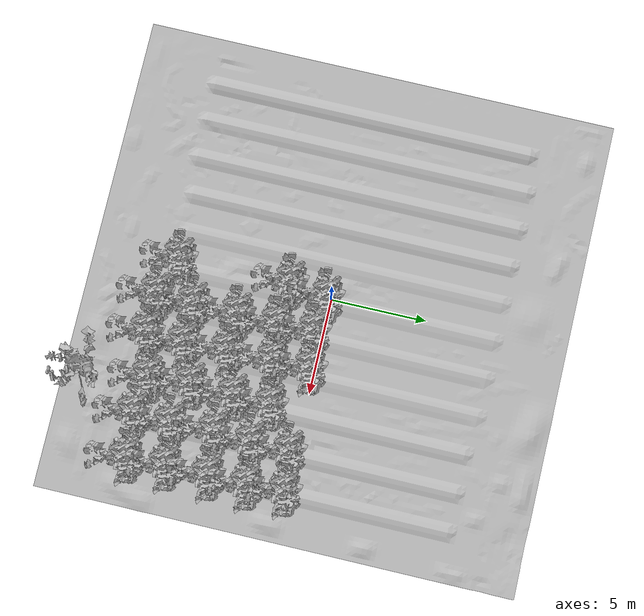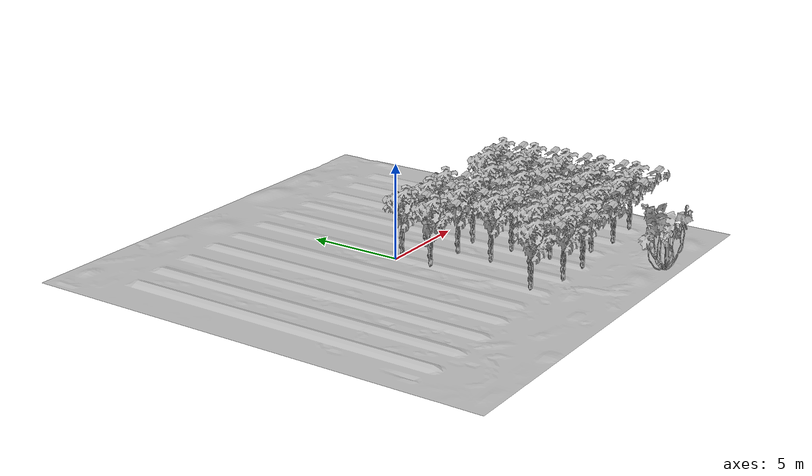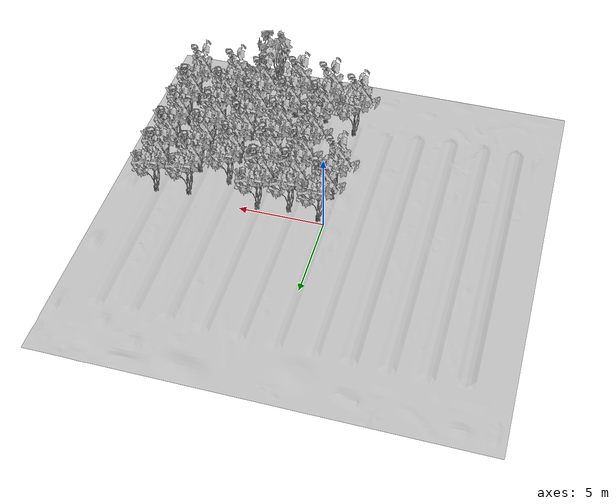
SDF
<sdf version="1.7">
 <world name="default">
  <model name="terrain_2">
   <pose>0.265856 -0.094206 0 0 -0 0</pose>
   <static>1</static>
   <link name="body">
    <visual name="visual">
     <geometry><mesh><uri>model://terrain_2/media/terrain_2.dae</uri></mesh></geometry>
     <material>
      <script>
       <uri>model://terrain_2/media/scripts</uri>
       <uri>model://terrain_2/media/Textures</uri>
       <name>RepeatedGrass/Diffuse</name>
      </script>
     </material>
    </visual>
    <collision name="collision">
     <geometry><mesh><uri>model://terrain_2/media/terrain_2.dae</uri></mesh></geometry>
    </collision>
   </link>
  </model>
  <model name="Bush 4">
   <static>1</static>
   <pose>6.33665 -11.7657 0 1.57079 -0 0</pose>
   <link name="link">
    <collision name="collision">
     <geometry><mesh><scale>5 5 5</scale><uri>model://bush_4/meshes/bush_4.obj</uri></mesh></geometry>
    </collision>
    <visual name="visual">
     <geometry><mesh><scale>5 5 5</scale><uri>model://bush_4/meshes/bush_4.obj</uri></mesh></geometry>
    </visual>
   </link>
  </model>
  <model name="Bush 5">
   <static>1</static>
   <pose>2.12509 -8.37314 0 1.57079 -0 0</pose>
   <link name="link">
    <collision name="collision">
     <geometry><mesh><scale>5 5 5</scale><uri>model://bush_5/meshes/bush_5.obj</uri></mesh></geometry>
    </collision>
    <visual name="visual">
     <geometry><mesh><scale>5 5 5</scale><uri>model://bush_5/meshes/bush_5.obj</uri></mesh></geometry>
    </visual>
   </link>
  </model>
  <model name="Bush 5_0">
   <static>1</static>
   <pose>2.18418 -6.49246 0 1.57079 -0 0</pose>
   <link name="link">
    <collision name="collision">
     <geometry><mesh><scale>5 5 5</scale><uri>model://bush_5/meshes/bush_5.obj</uri></mesh></geometry>
    </collision>
    <visual name="visual">
     <geometry><mesh><scale>5 5 5</scale><uri>model://bush_5/meshes/bush_5.obj</uri></mesh></geometry>
    </visual>
   </link>
  </model>
  <model name="Bush 5_1">
   <static>1</static>
   <pose>2.20313 -4.25197 0 1.57079 -0 0</pose>
   <link name="link">
    <collision name="collision">
     <geometry><mesh><scale>5 5 5</scale><uri>model://bush_5/meshes/bush_5.obj</uri></mesh></geometry>
    </collision>
    <visual name="visual">
     <geometry><mesh><scale>5 5 5</scale><uri>model://bush_5/meshes/bush_5.obj</uri></mesh></geometry>
    </visual>
   </link>
  </model>
  <model name="Bush 5_2">
   <static>1</static>
   <pose>2.26365 -2.27175 0 1.57079 -0 0</pose>
   <link name="link">
    <collision name="collision">
     <geometry><mesh><scale>5 5 5</scale><uri>model://bush_5/meshes/bush_5.obj</uri></mesh></geometry>
    </collision>
    <visual name="visual">
     <geometry><mesh><scale>5 5 5</scale><uri>model://bush_5/meshes/bush_5.obj</uri></mesh></geometry>
    </visual>
   </link>
  </model>
  <model name="Bush 5_3">
   <static>1</static>
   <pose>2.19014 -0.397493 0 1.57079 -0 0</pose>
   <link name="link">
    <collision name="collision">
     <geometry><mesh><scale>5 5 5</scale><uri>model://bush_5/meshes/bush_5.obj</uri></mesh></geometry>
    </collision>
    <visual name="visual">
     <geometry><mesh><scale>5 5 5</scale><uri>model://bush_5/meshes/bush_5.obj</uri></mesh></geometry>
    </visual>
   </link>
  </model>
  <model name="Bush 5_9">
   <static>1</static>
   <pose>0.171395 -7.68121 0 1.57079 -0 0</pose>
   <link name="link">
    <collision name="collision">
     <geometry><mesh><scale>5 5 5</scale><uri>model://bush_5/meshes/bush_5.obj</uri></mesh></geometry>
    </collision>
    <visual name="visual">
     <geometry><mesh><scale>5 5 5</scale><uri>model://bush_5/meshes/bush_5.obj</uri></mesh></geometry>
    </visual>
   </link>
  </model>
  <model name="Bush 5_12">
   <static>1</static>
   <pose>0.065497 -2.05241 0 1.57079 -0 0</pose>
   <link name="link">
    <collision name="collision">
     <geometry><mesh><scale>5 5 5</scale><uri>model://bush_5/meshes/bush_5.obj</uri></mesh></geometry>
    </collision>
    <visual name="visual">
     <geometry><mesh><scale>5 5 5</scale><uri>model://bush_5/meshes/bush_5.obj</uri></mesh></geometry>
    </visual>
   </link>
  </model>
  <model name="Bush 5_13">
   <static>1</static>
   <pose>0.384593 -0.148976 0 1.57079 -0 0</pose>
   <link name="link">
    <collision name="collision">
     <geometry><mesh><scale>5 5 5</scale><uri>model://bush_5/meshes/bush_5.obj</uri></mesh></geometry>
    </collision>
    <visual name="visual">
     <geometry><mesh><scale>5 5 5</scale><uri>model://bush_5/meshes/bush_5.obj</uri></mesh></geometry>
    </visual>
   </link>
  </model>
  <model name="Bush 5_55">
   <static>1</static>
   <pose>4.01473 -0.165247 0 1.57079 -0 0</pose>
   <link name="link">
    <collision name="collision">
     <geometry><mesh><scale>5 5 5</scale><uri>model://bush_5/meshes/bush_5.obj</uri></mesh></geometry>
    </collision>
    <visual name="visual">
     <geometry><mesh><scale>5 5 5</scale><uri>model://bush_5/meshes/bush_5.obj</uri></mesh></geometry>
    </visual>
   </link>
  </model>
  <model name="Bush 5_56">
   <static>1</static>
   <pose>4.05637 -2.0558 0 1.57079 -0 0</pose>
   <link name="link">
    <collision name="collision">
     <geometry><mesh><scale>5 5 5</scale><uri>model://bush_5/meshes/bush_5.obj</uri></mesh></geometry>
    </collision>
    <visual name="visual">
     <geometry><mesh><scale>5 5 5</scale><uri>model://bush_5/meshes/bush_5.obj</uri></mesh></geometry>
    </visual>
   </link>
  </model>
  <model name="Bush 5_57">
   <static>1</static>
   <pose>4.11048 -4.33292 0 1.57079 -0 0</pose>
   <link name="link">
    <collision name="collision">
     <geometry><mesh><scale>5 5 5</scale><uri>model://bush_5/meshes/bush_5.obj</uri></mesh></geometry>
    </collision>
    <visual name="visual">
     <geometry><mesh><scale>5 5 5</scale><uri>model://bush_5/meshes/bush_5.obj</uri></mesh></geometry>
    </visual>
   </link>
  </model>
  <model name="Bush 5_58">
   <static>1</static>
   <pose>4.21825 -6.49822 0 1.57079 -0 0</pose>
   <link name="link">
    <collision name="collision">
     <geometry><mesh><scale>5 5 5</scale><uri>model://bush_5/meshes/bush_5.obj</uri></mesh></geometry>
    </collision>
    <visual name="visual">
     <geometry><mesh><scale>5 5 5</scale><uri>model://bush_5/meshes/bush_5.obj</uri></mesh></geometry>
    </visual>
   </link>
  </model>
  <model name="Bush 5_59">
   <static>1</static>
   <pose>4.10255 -8.39166 0 1.57079 -0 0</pose>
   <link name="link">
    <collision name="collision">
     <geometry><mesh><scale>5 5 5</scale><uri>model://bush_5/meshes/bush_5.obj</uri></mesh></geometry>
    </collision>
    <visual name="visual">
     <geometry><mesh><scale>5 5 5</scale><uri>model://bush_5/meshes/bush_5.obj</uri></mesh></geometry>
    </visual>
   </link>
  </model>
  <model name="Bush 5_65">
   <static>1</static>
   <pose>6.20145 -1.62858 0 1.57079 -0 0</pose>
   <link name="link">
    <collision name="collision">
     <geometry><mesh><scale>5 5 5</scale><uri>model://bush_5/meshes/bush_5.obj</uri></mesh></geometry>
    </collision>
    <visual name="visual">
     <geometry><mesh><scale>5 5 5</scale><uri>model://bush_5/meshes/bush_5.obj</uri></mesh></geometry>
    </visual>
   </link>
  </model>
  <model name="Bush 5_66">
   <static>1</static>
   <pose>6.13611 -3.51095 0 1.57079 -0 0</pose>
   <link name="link">
    <collision name="collision">
     <geometry><mesh><scale>5 5 5</scale><uri>model://bush_5/meshes/bush_5.obj</uri></mesh></geometry>
    </collision>
    <visual name="visual">
     <geometry><mesh><scale>5 5 5</scale><uri>model://bush_5/meshes/bush_5.obj</uri></mesh></geometry>
    </visual>
   </link>
  </model>
  <model name="Bush 5_67">
   <static>1</static>
   <pose>6.0733 -5.65638 0 1.57079 -0 0</pose>
   <link name="link">
    <collision name="collision">
     <geometry><mesh><scale>5 5 5</scale><uri>model://bush_5/meshes/bush_5.obj</uri></mesh></geometry>
    </collision>
    <visual name="visual">
     <geometry><mesh><scale>5 5 5</scale><uri>model://bush_5/meshes/bush_5.obj</uri></mesh></geometry>
    </visual>
   </link>
  </model>
  <model name="Bush 5_68">
   <static>1</static>
   <pose>6.22467 -7.7701 0 1.57079 -0 0</pose>
   <link name="link">
    <collision name="collision">
     <geometry><mesh><scale>5 5 5</scale><uri>model://bush_5/meshes/bush_5.obj</uri></mesh></geometry>
    </collision>
    <visual name="visual">
     <geometry><mesh><scale>5 5 5</scale><uri>model://bush_5/meshes/bush_5.obj</uri></mesh></geometry>
    </visual>
   </link>
  </model>
  <model name="Bush 5_69">
   <static>1</static>
   <pose>8.08551 -8.06438 0 1.57079 -0 0</pose>
   <link name="link">
    <collision name="collision">
     <geometry><mesh><scale>5 5 5</scale><uri>model://bush_5/meshes/bush_5.obj</uri></mesh></geometry>
    </collision>
    <visual name="visual">
     <geometry><mesh><scale>5 5 5</scale><uri>model://bush_5/meshes/bush_5.obj</uri></mesh></geometry>
    </visual>
   </link>
  </model>
  <model name="Bush 5_70">
   <static>1</static>
   <pose>8.1828 -6.19784 0 1.57079 -0 0</pose>
   <link name="link">
    <collision name="collision">
     <geometry><mesh><scale>5 5 5</scale><uri>model://bush_5/meshes/bush_5.obj</uri></mesh></geometry>
    </collision>
    <visual name="visual">
     <geometry><mesh><scale>5 5 5</scale><uri>model://bush_5/meshes/bush_5.obj</uri></mesh></geometry>
    </visual>
   </link>
  </model>
  <model name="Bush 5_71">
   <static>1</static>
   <pose>8.04327 -4.00199 0 1.57079 -0 0</pose>
   <link name="link">
    <collision name="collision">
     <geometry><mesh><scale>5 5 5</scale><uri>model://bush_5/meshes/bush_5.obj</uri></mesh></geometry>
    </collision>
    <visual name="visual">
     <geometry><mesh><scale>5 5 5</scale><uri>model://bush_5/meshes/bush_5.obj</uri></mesh></geometry>
    </visual>
   </link>
  </model>
  <model name="Bush 5_72">
   <static>1</static>
   <pose>8.16863 -2.16511 0 1.57079 -0 0</pose>
   <link name="link">
    <collision name="collision">
     <geometry><mesh><scale>5 5 5</scale><uri>model://bush_5/meshes/bush_5.obj</uri></mesh></geometry>
    </collision>
    <visual name="visual">
     <geometry><mesh><scale>5 5 5</scale><uri>model://bush_5/meshes/bush_5.obj</uri></mesh></geometry>
    </visual>
   </link>
  </model>
  <model name="Bush 5_73">
   <static>1</static>
   <pose>8.19217 -0.225862 0 1.57079 -0 0</pose>
   <link name="link">
    <collision name="collision">
     <geometry><mesh><scale>5 5 5</scale><uri>model://bush_5/meshes/bush_5.obj</uri></mesh></geometry>
    </collision>
    <visual name="visual">
     <geometry><mesh><scale>5 5 5</scale><uri>model://bush_5/meshes/bush_5.obj</uri></mesh></geometry>
    </visual>
   </link>
  </model>
  <model name="Bush 5_82">
   <static>1</static>
   <pose>10.1223 -0.002253 0 1.57079 -0 0</pose>
   <link name="link">
    <collision name="collision">
     <geometry><mesh><scale>5 5 5</scale><uri>model://bush_5/meshes/bush_5.obj</uri></mesh></geometry>
    </collision>
    <visual name="visual">
     <geometry><mesh><scale>5 5 5</scale><uri>model://bush_5/meshes/bush_5.obj</uri></mesh></geometry>
    </visual>
   </link>
  </model>
  <model name="Bush 5_83">
   <static>1</static>
   <pose>10.2472 -1.88586 0 1.57079 -0 0</pose>
   <link name="link">
    <collision name="collision">
     <geometry><mesh><scale>5 5 5</scale><uri>model://bush_5/meshes/bush_5.obj</uri></mesh></geometry>
    </collision>
    <visual name="visual">
     <geometry><mesh><scale>5 5 5</scale><uri>model://bush_5/meshes/bush_5.obj</uri></mesh></geometry>
    </visual>
   </link>
  </model>
  <model name="Bush 5_84">
   <static>1</static>
   <pose>10.2195 -3.81552 0 1.57079 -0 0</pose>
   <link name="link">
    <collision name="collision">
     <geometry><mesh><scale>5 5 5</scale><uri>model://bush_5/meshes/bush_5.obj</uri></mesh></geometry>
    </collision>
    <visual name="visual">
     <geometry><mesh><scale>5 5 5</scale><uri>model://bush_5/meshes/bush_5.obj</uri></mesh></geometry>
    </visual>
   </link>
  </model>
  <model name="Bush 5_85">
   <static>1</static>
   <pose>10.2363 -5.94724 0 1.57079 -0 0</pose>
   <link name="link">
    <collision name="collision">
     <geometry><mesh><scale>5 5 5</scale><uri>model://bush_5/meshes/bush_5.obj</uri></mesh></geometry>
    </collision>
    <visual name="visual">
     <geometry><mesh><scale>5 5 5</scale><uri>model://bush_5/meshes/bush_5.obj</uri></mesh></geometry>
    </visual>
   </link>
  </model>
  <model name="Bush 5_86">
   <static>1</static>
   <pose>10.3075 -7.90143 0 1.57079 -0 0</pose>
   <link name="link">
    <collision name="collision">
     <geometry><mesh><scale>5 5 5</scale><uri>model://bush_5/meshes/bush_5.obj</uri></mesh></geometry>
    </collision>
    <visual name="visual">
     <geometry><mesh><scale>5 5 5</scale><uri>model://bush_5/meshes/bush_5.obj</uri></mesh></geometry>
    </visual>
   </link>
  </model>
 </world>
</sdf>
